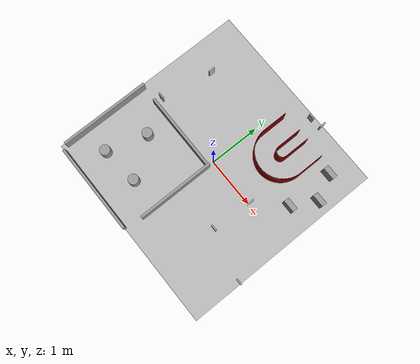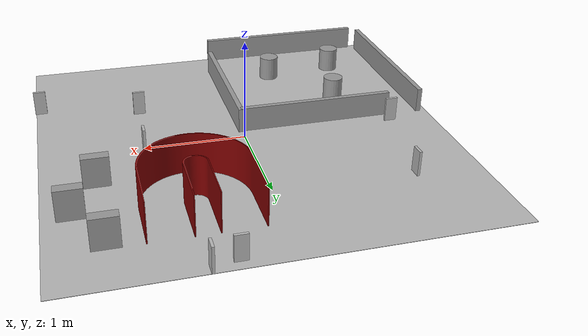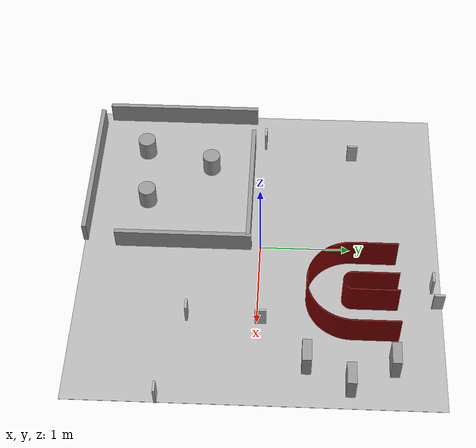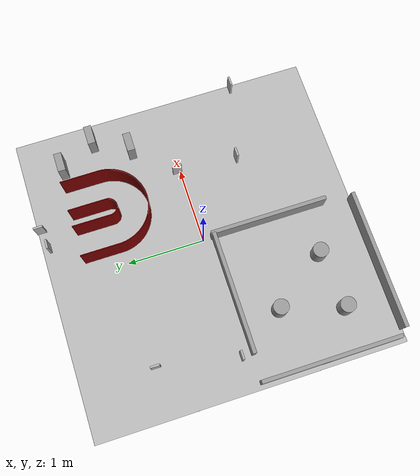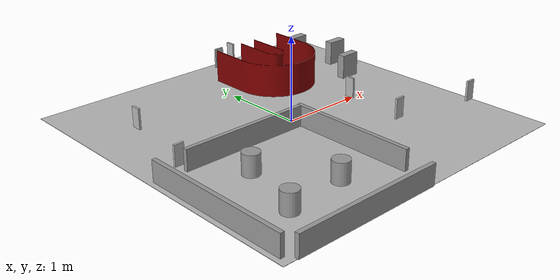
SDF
<sdf version="1.7">
 <world name="default">
  <scene>
   <ambient>0 0 0 1</ambient>
   <shadows>0</shadows>
   <grid>0</grid>
   <background>0.7 0.7 0.7 1</background>
  </scene>
  <model name="course">
   <static>1</static>
   <link name="course_link">
    <collision name="course_collision">
     <geometry><plane><normal>0 0 1</normal><size>4 4</size></plane></geometry>
     <surface><friction><ode><mu>100</mu><mu2>50</mu2></ode></friction></surface>
    </collision>
    <visual name="course_visual">
     <cast_shadows>0</cast_shadows>
     <geometry><plane><normal>0 0 1</normal><size>4 4</size></plane></geometry>
     <material>
      <script>
       <uri>model://course/materials/scripts</uri>
       <uri>model://course/materials/textures</uri>
       <name>course</name>
      </script>
     </material>
    </visual>
   </link>
   <pose>0 0 0 0 0 -3.14</pose>
  </model>
  <model name="traffic_parking">
   <static>1</static>
   <link name="box">
    <collision name="collision"><geometry><box><size>0.12 0.025 0.25</size></box></geometry></collision>
    <visual name="visual">
     <geometry><box><size>0.12 0.025 0.25</size></box></geometry>
     <material>
      <script>
       <uri>model://traffic_parking/materials/scripts</uri>
       <uri>model://traffic_parking/materials/textures</uri>
       <name>traffic_parking</name>
      </script>
     </material>
    </visual>
   </link>
   <pose>0.74 1.95 0.13 0 0 -1.57</pose>
  </model>
  <model name="traffic_tunnel">
   <pose>-1.544 0.006774 0.125 -1e-06 -3e-06 0.000132</pose>
   <link name="box">
    <collision name="collision"><geometry><box><size>0.12 0.025 0.25</size></box></geometry></collision>
    <visual name="visual">
     <geometry><box><size>0.12 0.025 0.25</size></box></geometry>
     <material>
      <script>
       <uri>model://traffic_tunnel/materials/scripts</uri>
       <uri>model://traffic_tunnel/materials/textures</uri>
       <name>traffic_tunnel</name>
      </script>
     </material>
    </visual>
    <inertial>
     <inertia><ixx>1</ixx><ixy>0</ixy><ixz>0</ixz><iyy>1</iyy><iyz>0</iyz><izz>1</izz></inertia>
     <mass>1</mass>
    </inertial>
   </link>
  </model>
  <model name="traffic_stop">
   <static>1</static>
   <link name="box">
    <collision name="collision"><geometry><box><size>0.12 0.025 0.25</size></box></geometry></collision>
    <visual name="visual">
     <geometry><box><size>0.12 0.025 0.25</size></box></geometry>
     <material>
      <script>
       <uri>model://traffic_stop/materials/scripts</uri>
       <uri>model://traffic_stop/materials/textures</uri>
       <name>traffic_stop</name>
      </script>
     </material>
    </visual>
   </link>
   <pose>-1.35 1.04 0.125 0 0 -1.57</pose>
  </model>
  <model name="traffic_pl_left">
   <static>1</static>
   <link name="box">
    <collision name="collision"><geometry><box><size>0.12 0.025 0.25</size></box></geometry></collision>
    <visual name="visual">
     <geometry><box><size>0.12 0.025 0.25</size></box></geometry>
     <material>
      <script>
       <uri>model://traffic_pl_left/materials/scripts</uri>
       <uri>model://traffic_pl_left/materials/textures</uri>
       <name>traffic_pl_left</name>
      </script>
     </material>
    </visual>
   </link>
   <pose>0.5 1.9 0.13 0 -0 0</pose>
  </model>
  <model name="traffic_construction">
   <static>1</static>
   <link name="box">
    <collision name="collision"><geometry><box><size>0.12 0.025 0.25</size></box></geometry></collision>
    <visual name="visual">
     <geometry><box><size>0.12 0.025 0.25</size></box></geometry>
     <material>
      <script>
       <uri>model://traffic_construction/materials/scripts</uri>
       <uri>model://traffic_construction/materials/textures</uri>
       <name>traffic_construction</name>
      </script>
     </material>
    </visual>
   </link>
   <pose>1 0.04 0.125 0 0 -1.57</pose>
  </model>
  <model name="traffic_intersection">
   <static>1</static>
   <link name="box">
    <collision name="collision"><geometry><box><size>0.12 0.025 0.25</size></box></geometry></collision>
    <visual name="visual">
     <geometry><box><size>0.12 0.025 0.25</size></box></geometry>
     <material>
      <script>
       <uri>model://traffic_intersection/materials/scripts</uri>
       <uri>model://traffic_intersection/materials/textures</uri>
       <name>traffic_intersection</name>
      </script>
     </material>
    </visual>
   </link>
   <pose>1.95 -1 0.125 0 -0 0</pose>
  </model>
  <model name="traffic_noentry">
   <static>1</static>
   <link name="box">
    <collision name="collision"><geometry><box><size>0.12 0.025 0.25</size></box></geometry></collision>
    <visual name="visual">
     <geometry><box><size>0.12 0.025 0.25</size></box></geometry>
     <material>
      <script>
       <uri>model://traffic_noentry/materials/scripts</uri>
       <uri>model://traffic_noentry/materials/textures</uri>
       <name>traffic_noentry</name>
      </script>
     </material>
    </visual>
   </link>
   <pose>0.95 -0.758 0.125 0 -0 0</pose>
  </model>
  <light name="sun" type="directional">
   <pose>0 0 10 0 -0 0</pose>
   <diffuse>0.8 0.8 0.8 1</diffuse>
   <specular>0.1 0.1 0.1 1</specular>
   <attenuation>
    <range>1000</range>
    <constant>0.9</constant>
    <linear>0.01</linear>
    <quadratic>0.001</quadratic>
   </attenuation>
   <direction>-0.5 0.5 -1</direction>
   <spot><inner_angle>0</inner_angle><outer_angle>0</outer_angle><falloff>0</falloff></spot>
  </light>
  <gravity>0 0 -9.8</gravity>
  <magnetic_field>6e-06 2.3e-05 -4.2e-05</magnetic_field>
  <atmosphere type="adiabatic"/>
  <physics name="default_physics" default="0" type="ode">
   <max_step_size>0.001</max_step_size>
   <real_time_factor>1</real_time_factor>
   <real_time_update_rate>1000</real_time_update_rate>
  </physics>
  <spherical_coordinates>
   <surface_model>EARTH_WGS84</surface_model>
   <latitude_deg>0</latitude_deg>
   <longitude_deg>0</longitude_deg>
   <elevation>0</elevation>
   <heading_deg>0</heading_deg>
  </spherical_coordinates>
  <light name="user_point_light_1" type="point">
   <pose>-1.64815 0.604519 1 0 -0 0</pose>
   <diffuse>0.5 0.5 0.5 1</diffuse>
   <specular>0.1 0.1 0.1 1</specular>
   <attenuation>
    <range>20</range>
    <constant>0.5</constant>
    <linear>0.01</linear>
    <quadratic>0.001</quadratic>
   </attenuation>
   <cast_shadows>0</cast_shadows>
   <direction>0 0 -1</direction>
   <spot><inner_angle>0</inner_angle><outer_angle>0</outer_angle><falloff>0</falloff></spot>
  </light>
  <light name="user_point_light_2" type="point">
   <pose>1.63854 1.69565 1 0 -0 0</pose>
   <diffuse>0.5 0.5 0.5 1</diffuse>
   <specular>0.1 0.1 0.1 1</specular>
   <attenuation>
    <range>20</range>
    <constant>0.5</constant>
    <linear>0.01</linear>
    <quadratic>0.001</quadratic>
   </attenuation>
   <cast_shadows>0</cast_shadows>
   <direction>0 0 -1</direction>
   <spot><inner_angle>0</inner_angle><outer_angle>0</outer_angle><falloff>0</falloff></spot>
  </light>
  <light name="user_point_light_3" type="point">
   <pose>0.42 -3.31 1 0 -0 0</pose>
   <diffuse>0.5 0.5 0.5 1</diffuse>
   <specular>0.1 0.1 0.1 1</specular>
   <attenuation>
    <range>20</range>
    <constant>0.5</constant>
    <linear>0.01</linear>
    <quadratic>0.001</quadratic>
   </attenuation>
   <cast_shadows>0</cast_shadows>
   <direction>0 0 -1</direction>
   <spot><inner_angle>0</inner_angle><outer_angle>0</outer_angle><falloff>0</falloff></spot>
  </light>
  <model name="tunnel_wall">
   <link name="Wall_1">
    <pose>-0.980783 0.049883 0 0 -0 1.5708</pose>
    <visual name="Wall_1_Visual">
     <pose>0 0 0.125 0 -0 0</pose>
     <geometry><box><size>1.8 0.05 0.25</size></box></geometry>
     <material>
      <script><uri>file://media/materials/scripts/gazebo.material</uri><name>Gazebo/Grey</name></script>
      <ambient>1 1 1 1</ambient>
      <diffuse>0.7 0.7 0.7 1</diffuse>
      <specular>0.01 0.01 0.01 1</specular>
      <emissive>0 0 0 1</emissive>
     </material>
    </visual>
    <collision name="Wall_1_Collision">
     <pose>0 0 0.125 0 -0 0</pose>
     <geometry><box><size>1.8 0.05 0.25</size></box></geometry>
     <surface>
      <friction>
       <ode><mu>1</mu><mu2>1</mu2><fdir1>0 0 0</fdir1><slip1>0</slip1><slip2>0</slip2></ode>
       <torsional>
        <coefficient>1</coefficient>
        <patch_radius>0</patch_radius>
        <surface_radius>0</surface_radius>
        <use_patch_radius>1</use_patch_radius>
        <ode><slip>0</slip></ode>
       </torsional>
      </friction>
      <bounce><restitution_coefficient>0</restitution_coefficient><threshold>1e+06</threshold></bounce>
      <contact>
       <collide_without_contact>0</collide_without_contact>
       <collide_without_contact_bitmask>1</collide_without_contact_bitmask>
       <collide_bitmask>1</collide_bitmask>
       <ode>
        <soft_cfm>0</soft_cfm>
        <soft_erp>0.2</soft_erp>
        <kp>1e+13</kp>
        <kd>1</kd>
        <max_vel>0.01</max_vel>
        <min_depth>0</min_depth>
       </ode>
       <bullet>
        <split_impulse>1</split_impulse>
        <split_impulse_penetration_threshold>-0.01</split_impulse_penetration_threshold>
        <soft_cfm>0</soft_cfm>
        <soft_erp>0.2</soft_erp>
        <kp>1e+13</kp>
        <kd>1</kd>
       </bullet>
      </contact>
     </surface>
    </collision>
   </link>
   <link name="Wall_2">
    <pose>0 -0.935438 0 0 -0 0</pose>
    <visual name="Wall_2_Visual">
     <pose>0 0 0.125 0 -0 0</pose>
     <geometry><box><size>1.8 0.05 0.25</size></box></geometry>
     <material>
      <script><uri>file://media/materials/scripts/gazebo.material</uri><name>Gazebo/Grey</name></script>
      <ambient>1 1 1 1</ambient>
      <diffuse>0.7 0.7 0.7 1</diffuse>
      <specular>0.01 0.01 0.01 1</specular>
      <emissive>0 0 0 1</emissive>
     </material>
    </visual>
    <collision name="Wall_2_Collision">
     <pose>0 0 0.125 0 -0 0</pose>
     <geometry><box><size>1.8 0.05 0.25</size></box></geometry>
     <surface>
      <friction>
       <ode><mu>1</mu><mu2>1</mu2><fdir1>0 0 0</fdir1><slip1>0</slip1><slip2>0</slip2></ode>
       <torsional>
        <coefficient>1</coefficient>
        <patch_radius>0</patch_radius>
        <surface_radius>0</surface_radius>
        <use_patch_radius>1</use_patch_radius>
        <ode><slip>0</slip></ode>
       </torsional>
      </friction>
      <bounce><restitution_coefficient>0</restitution_coefficient><threshold>1e+06</threshold></bounce>
      <contact>
       <collide_without_contact>0</collide_without_contact>
       <collide_without_contact_bitmask>1</collide_without_contact_bitmask>
       <collide_bitmask>1</collide_bitmask>
       <ode>
        <soft_cfm>0</soft_cfm>
        <soft_erp>0.2</soft_erp>
        <kp>1e+13</kp>
        <kd>1</kd>
        <max_vel>0.01</max_vel>
        <min_depth>0</min_depth>
       </ode>
       <bullet>
        <split_impulse>1</split_impulse>
        <split_impulse_penetration_threshold>-0.01</split_impulse_penetration_threshold>
        <soft_cfm>0</soft_cfm>
        <soft_erp>0.2</soft_erp>
        <kp>1e+13</kp>
        <kd>1</kd>
       </bullet>
      </contact>
     </surface>
    </collision>
   </link>
   <link name="Wall_3">
    <pose>0.943396 0.183669 0 0 -0 1.5708</pose>
    <inertial>
     <inertia><ixx>nan</ixx><ixy>0</ixy><ixz>0</ixz><iyy>nan</iyy><iyz>0</iyz><izz>nan</izz></inertia>
     <mass>0</mass>
    </inertial>
    <visual name="Wall_3_Visual">
     <pose>0 0 0.125 0 -0 0</pose>
     <geometry><box><size>1.53699 0.05 0.25</size></box></geometry>
     <material>
      <script><uri>file://media/materials/scripts/gazebo.material</uri><name>Gazebo/Grey</name></script>
      <ambient>1 1 1 1</ambient>
      <diffuse>0.7 0.7 0.7 1</diffuse>
      <specular>0.01 0.01 0.01 1</specular>
      <emissive>0 0 0 1</emissive>
     </material>
    </visual>
    <collision name="Wall_3_Collision">
     <pose>0 0 0.125 0 -0 0</pose>
     <geometry><box><size>1.53699 0.05 0.25</size></box></geometry>
     <surface>
      <friction>
       <ode><mu>1</mu><mu2>1</mu2><fdir1>0 0 0</fdir1><slip1>0</slip1><slip2>0</slip2></ode>
       <torsional>
        <coefficient>1</coefficient>
        <patch_radius>0</patch_radius>
        <surface_radius>0</surface_radius>
        <use_patch_radius>1</use_patch_radius>
        <ode><slip>0</slip></ode>
       </torsional>
      </friction>
      <bounce><restitution_coefficient>0</restitution_coefficient><threshold>1e+06</threshold></bounce>
      <contact>
       <collide_without_contact>0</collide_without_contact>
       <collide_without_contact_bitmask>1</collide_without_contact_bitmask>
       <collide_bitmask>1</collide_bitmask>
       <ode>
        <soft_cfm>0</soft_cfm>
        <soft_erp>0.2</soft_erp>
        <kp>1e+13</kp>
        <kd>1</kd>
        <max_vel>0.01</max_vel>
        <min_depth>0</min_depth>
       </ode>
       <bullet>
        <split_impulse>1</split_impulse>
        <split_impulse_penetration_threshold>-0.01</split_impulse_penetration_threshold>
        <soft_cfm>0</soft_cfm>
        <soft_erp>0.2</soft_erp>
        <kp>1e+13</kp>
        <kd>1</kd>
       </bullet>
      </contact>
     </surface>
    </collision>
   </link>
   <link name="Wall_4">
    <pose>0.15 0.915 0 0 -0 3.14159</pose>
    <visual name="Wall_4_Visual">
     <pose>0 0 0.125 0 -0 0</pose>
     <geometry><box><size>1.58 0.05 0.25</size></box></geometry>
     <material>
      <script><uri>file://media/materials/scripts/gazebo.material</uri><name>Gazebo/Grey</name></script>
      <ambient>1 1 1 1</ambient>
      <diffuse>0.7 0.7 0.7 1</diffuse>
      <specular>0.01 0.01 0.01 1</specular>
      <emissive>0 0 0 1</emissive>
     </material>
    </visual>
    <collision name="Wall_4_Collision">
     <pose>0 0 0.125 0 -0 0</pose>
     <geometry><box><size>1.58 0.05 0.25</size></box></geometry>
     <surface>
      <friction>
       <ode><mu>1</mu><mu2>1</mu2><fdir1>0 0 0</fdir1><slip1>0</slip1><slip2>0</slip2></ode>
       <torsional>
        <coefficient>1</coefficient>
        <patch_radius>0</patch_radius>
        <surface_radius>0</surface_radius>
        <use_patch_radius>1</use_patch_radius>
        <ode><slip>0</slip></ode>
       </torsional>
      </friction>
      <bounce><restitution_coefficient>0</restitution_coefficient><threshold>1e+06</threshold></bounce>
      <contact>
       <collide_without_contact>0</collide_without_contact>
       <collide_without_contact_bitmask>1</collide_without_contact_bitmask>
       <collide_bitmask>1</collide_bitmask>
       <ode>
        <soft_cfm>0</soft_cfm>
        <soft_erp>0.2</soft_erp>
        <kp>1e+13</kp>
        <kd>1</kd>
        <max_vel>0.01</max_vel>
        <min_depth>0</min_depth>
       </ode>
       <bullet>
        <split_impulse>1</split_impulse>
        <split_impulse_penetration_threshold>-0.01</split_impulse_penetration_threshold>
        <soft_cfm>0</soft_cfm>
        <soft_erp>0.2</soft_erp>
        <kp>1e+13</kp>
        <kd>1</kd>
       </bullet>
      </contact>
     </surface>
    </collision>
   </link>
   <static>1</static>
   <pose>-0.934697 -1.05574 0 0 -0 0</pose>
  </model>
  <model name="tunnel_obstacle">
   <link name="obstacle_1">
    <pose>0.42322 -0.212034 0 0 -0 0</pose>
    <inertial>
     <mass>0.0416663</mass>
     <inertia>
      <ixx>0.00098188</ixx>
      <ixy>0</ixy>
      <ixz>0</ixz>
      <iyy>0.00098188</iyy>
      <iyz>0</iyz>
      <izz>0.00046751</izz>
     </inertia>
    </inertial>
    <visual name="visual">
     <geometry><cylinder><radius>0.1</radius><length>0.25</length></cylinder></geometry>
     <material>
      <lighting>1</lighting>
      <script><uri>file://media/materials/scripts/gazebo.material</uri><name>Gazebo/Grey</name></script>
      <ambient>0.3 0.3 0.3 1</ambient>
      <diffuse>0.7 0.7 0.7 1</diffuse>
      <specular>0.01 0.01 0.01 1</specular>
      <emissive>0 0 0 1</emissive>
      <shader type="pixel"><normal_map>__default__</normal_map></shader>
     </material>
    </visual>
    <collision name="collision">
     <geometry><cylinder><radius>0.1</radius><length>0.46418</length></cylinder></geometry>
     <surface>
      <friction>
       <ode><mu>1</mu><mu2>1</mu2><fdir1>0 0 0</fdir1><slip1>0</slip1><slip2>0</slip2></ode>
       <torsional>
        <coefficient>1</coefficient>
        <patch_radius>0</patch_radius>
        <surface_radius>0</surface_radius>
        <use_patch_radius>1</use_patch_radius>
        <ode><slip>0</slip></ode>
       </torsional>
      </friction>
      <bounce><restitution_coefficient>0</restitution_coefficient><threshold>1e+06</threshold></bounce>
      <contact>
       <collide_without_contact>0</collide_without_contact>
       <collide_without_contact_bitmask>1</collide_without_contact_bitmask>
       <collide_bitmask>1</collide_bitmask>
       <ode>
        <soft_cfm>0</soft_cfm>
        <soft_erp>0.2</soft_erp>
        <kp>1e+13</kp>
        <kd>1</kd>
        <max_vel>0.01</max_vel>
        <min_depth>0</min_depth>
       </ode>
       <bullet>
        <split_impulse>1</split_impulse>
        <split_impulse_penetration_threshold>-0.01</split_impulse_penetration_threshold>
        <soft_cfm>0</soft_cfm>
        <soft_erp>0.2</soft_erp>
        <kp>1e+13</kp>
        <kd>1</kd>
       </bullet>
      </contact>
     </surface>
    </collision>
   </link>
   <link name="obstacle_2">
    <pose>-0.323729 -0.287563 0 0 -0 0</pose>
    <inertial>
     <mass>0.0416663</mass>
     <inertia>
      <ixx>0.00098188</ixx>
      <ixy>0</ixy>
      <ixz>0</ixz>
      <iyy>0.00098188</iyy>
      <iyz>0</iyz>
      <izz>0.00046751</izz>
     </inertia>
    </inertial>
    <visual name="visual">
     <geometry><cylinder><radius>0.1</radius><length>0.25</length></cylinder></geometry>
     <material>
      <lighting>1</lighting>
      <script><uri>file://media/materials/scripts/gazebo.material</uri><name>Gazebo/Grey</name></script>
      <ambient>0.3 0.3 0.3 1</ambient>
      <diffuse>0.7 0.7 0.7 1</diffuse>
      <specular>0.01 0.01 0.01 1</specular>
      <emissive>0 0 0 1</emissive>
      <shader type="pixel"><normal_map>__default__</normal_map></shader>
     </material>
    </visual>
    <collision name="collision">
     <geometry><cylinder><radius>0.1</radius><length>0.46418</length></cylinder></geometry>
     <surface>
      <friction>
       <ode><mu>1</mu><mu2>1</mu2><fdir1>0 0 0</fdir1><slip1>0</slip1><slip2>0</slip2></ode>
       <torsional>
        <coefficient>1</coefficient>
        <patch_radius>0</patch_radius>
        <surface_radius>0</surface_radius>
        <use_patch_radius>1</use_patch_radius>
        <ode><slip>0</slip></ode>
       </torsional>
      </friction>
      <bounce><restitution_coefficient>0</restitution_coefficient><threshold>1e+06</threshold></bounce>
      <contact>
       <collide_without_contact>0</collide_without_contact>
       <collide_without_contact_bitmask>1</collide_without_contact_bitmask>
       <collide_bitmask>1</collide_bitmask>
       <ode>
        <soft_cfm>0</soft_cfm>
        <soft_erp>0.2</soft_erp>
        <kp>1e+13</kp>
        <kd>1</kd>
        <max_vel>0.01</max_vel>
        <min_depth>0</min_depth>
       </ode>
       <bullet>
        <split_impulse>1</split_impulse>
        <split_impulse_penetration_threshold>-0.01</split_impulse_penetration_threshold>
        <soft_cfm>0</soft_cfm>
        <soft_erp>0.2</soft_erp>
        <kp>1e+13</kp>
        <kd>1</kd>
       </bullet>
      </contact>
     </surface>
    </collision>
   </link>
   <link name="obstacle_3">
    <pose>-0.099492 0.499594 0 0 -0 0</pose>
    <inertial>
     <mass>0.0416663</mass>
     <inertia>
      <ixx>0.00098188</ixx>
      <ixy>0</ixy>
      <ixz>0</ixz>
      <iyy>0.00098188</iyy>
      <iyz>0</iyz>
      <izz>0.00046751</izz>
     </inertia>
    </inertial>
    <visual name="visual">
     <geometry><cylinder><radius>0.1</radius><length>0.25</length></cylinder></geometry>
     <material>
      <lighting>1</lighting>
      <script><uri>file://media/materials/scripts/gazebo.material</uri><name>Gazebo/Grey</name></script>
      <ambient>0.3 0.3 0.3 1</ambient>
      <diffuse>0.7 0.7 0.7 1</diffuse>
      <specular>0.01 0.01 0.01 1</specular>
      <emissive>0 0 0 1</emissive>
      <shader type="pixel"><normal_map>__default__</normal_map></shader>
     </material>
    </visual>
    <collision name="collision">
     <geometry><cylinder><radius>0.1</radius><length>0.46418</length></cylinder></geometry>
     <surface>
      <friction>
       <ode><mu>1</mu><mu2>1</mu2><fdir1>0 0 0</fdir1><slip1>0</slip1><slip2>0</slip2></ode>
       <torsional>
        <coefficient>1</coefficient>
        <patch_radius>0</patch_radius>
        <surface_radius>0</surface_radius>
        <use_patch_radius>1</use_patch_radius>
        <ode><slip>0</slip></ode>
       </torsional>
      </friction>
      <bounce><restitution_coefficient>0</restitution_coefficient><threshold>1e+06</threshold></bounce>
      <contact>
       <collide_without_contact>0</collide_without_contact>
       <collide_without_contact_bitmask>1</collide_without_contact_bitmask>
       <collide_bitmask>1</collide_bitmask>
       <ode>
        <soft_cfm>0</soft_cfm>
        <soft_erp>0.2</soft_erp>
        <kp>1e+13</kp>
        <kd>1</kd>
        <max_vel>0.01</max_vel>
        <min_depth>0</min_depth>
       </ode>
       <bullet>
        <split_impulse>1</split_impulse>
        <split_impulse_penetration_threshold>-0.01</split_impulse_penetration_threshold>
        <soft_cfm>0</soft_cfm>
        <soft_erp>0.2</soft_erp>
        <kp>1e+13</kp>
        <kd>1</kd>
       </bullet>
      </contact>
     </surface>
    </collision>
   </link>
   <static>1</static>
   <pose>-1.04145 -1.12671 0.125 0 -0 0</pose>
  </model>
  <model name="barrier_1">
   <link name="link">
    <inertial>
     <mass>1</mass>
     <inertia>
      <ixx>0.166667</ixx>
      <ixy>0</ixy>
      <ixz>0</ixz>
      <iyy>0.166667</iyy>
      <iyz>0</iyz>
      <izz>0.166667</izz>
     </inertia>
    </inertial>
    <visual name="visual">
     <geometry><box><size>0.25 0.1 0.3</size></box></geometry>
     <material>
      <script><name>Gazebo/Grey</name><uri>file://media/materials/scripts/gazebo.material</uri></script>
      <shader type="pixel"><normal_map>__default__</normal_map></shader>
      <ambient>0.3 0.3 0.3 1</ambient>
      <diffuse>0.7 0.7 0.7 1</diffuse>
      <specular>0.01 0.01 0.01 1</specular>
      <emissive>0 0 0 1</emissive>
     </material>
    </visual>
    <collision name="collision">
     <geometry><box><size>0.25 0.1 0.3</size></box></geometry>
     <surface>
      <friction>
       <ode><mu>1</mu><mu2>1</mu2><fdir1>0 0 0</fdir1><slip1>0</slip1><slip2>0</slip2></ode>
       <torsional>
        <coefficient>1</coefficient>
        <patch_radius>0</patch_radius>
        <surface_radius>0</surface_radius>
        <use_patch_radius>1</use_patch_radius>
        <ode><slip>0</slip></ode>
       </torsional>
      </friction>
      <bounce><restitution_coefficient>0</restitution_coefficient><threshold>1e+06</threshold></bounce>
      <contact>
       <collide_without_contact>0</collide_without_contact>
       <collide_without_contact_bitmask>1</collide_without_contact_bitmask>
       <collide_bitmask>1</collide_bitmask>
       <ode>
        <soft_cfm>0</soft_cfm>
        <soft_erp>0.2</soft_erp>
        <kp>1e+13</kp>
        <kd>1</kd>
        <max_vel>0.01</max_vel>
        <min_depth>0</min_depth>
       </ode>
       <bullet>
        <split_impulse>1</split_impulse>
        <split_impulse_penetration_threshold>-0.01</split_impulse_penetration_threshold>
        <soft_cfm>0</soft_cfm>
        <soft_erp>0.2</soft_erp>
        <kp>1e+13</kp>
        <kd>1</kd>
       </bullet>
      </contact>
     </surface>
    </collision>
   </link>
   <static>0</static>
   <pose>1.49 0.54 0.149995 -1e-06 4e-06 2e-06</pose>
  </model>
  <model name="barrier_2">
   <link name="link">
    <inertial>
     <mass>1</mass>
     <inertia>
      <ixx>0.166667</ixx>
      <ixy>0</ixy>
      <ixz>0</ixz>
      <iyy>0.166667</iyy>
      <iyz>0</iyz>
      <izz>0.166667</izz>
     </inertia>
    </inertial>
    <visual name="visual">
     <geometry><box><size>0.25 0.1 0.3</size></box></geometry>
     <material>
      <script><name>Gazebo/Grey</name><uri>file://media/materials/scripts/gazebo.material</uri></script>
      <shader type="pixel"><normal_map>__default__</normal_map></shader>
      <ambient>0.3 0.3 0.3 1</ambient>
      <diffuse>0.7 0.7 0.7 1</diffuse>
      <specular>0.01 0.01 0.01 1</specular>
      <emissive>0 0 0 1</emissive>
     </material>
    </visual>
    <collision name="collision">
     <geometry><box><size>0.25 0.1 0.3</size></box></geometry>
     <surface>
      <friction>
       <ode><mu>1</mu><mu2>1</mu2><fdir1>0 0 0</fdir1><slip1>0</slip1><slip2>0</slip2></ode>
       <torsional>
        <coefficient>1</coefficient>
        <patch_radius>0</patch_radius>
        <surface_radius>0</surface_radius>
        <use_patch_radius>1</use_patch_radius>
        <ode><slip>0</slip></ode>
       </torsional>
      </friction>
      <bounce><restitution_coefficient>0</restitution_coefficient><threshold>1e+06</threshold></bounce>
      <contact>
       <collide_without_contact>0</collide_without_contact>
       <collide_without_contact_bitmask>1</collide_without_contact_bitmask>
       <collide_bitmask>1</collide_bitmask>
       <ode>
        <soft_cfm>0</soft_cfm>
        <soft_erp>0.2</soft_erp>
        <kp>1e+13</kp>
        <kd>1</kd>
        <max_vel>0.01</max_vel>
        <min_depth>0</min_depth>
       </ode>
       <bullet>
        <split_impulse>1</split_impulse>
        <split_impulse_penetration_threshold>-0.01</split_impulse_penetration_threshold>
        <soft_cfm>0</soft_cfm>
        <soft_erp>0.2</soft_erp>
        <kp>1e+13</kp>
        <kd>1</kd>
       </bullet>
      </contact>
     </surface>
    </collision>
   </link>
   <static>0</static>
   <pose>1.74 1 0.149999 0 -0 1e-06</pose>
  </model>
  <model name="barrier_3">
   <link name="link">
    <inertial>
     <mass>1</mass>
     <inertia>
      <ixx>0.166667</ixx>
      <ixy>0</ixy>
      <ixz>0</ixz>
      <iyy>0.166667</iyy>
      <iyz>0</iyz>
      <izz>0.166667</izz>
     </inertia>
    </inertial>
    <visual name="visual">
     <geometry><box><size>0.25 0.1 0.3</size></box></geometry>
     <material>
      <script><name>Gazebo/Grey</name><uri>file://media/materials/scripts/gazebo.material</uri></script>
      <shader type="pixel"><normal_map>__default__</normal_map></shader>
      <ambient>0.3 0.3 0.3 1</ambient>
      <diffuse>0.7 0.7 0.7 1</diffuse>
      <specular>0.01 0.01 0.01 1</specular>
      <emissive>0 0 0 1</emissive>
     </material>
    </visual>
    <collision name="collision">
     <geometry><box><size>0.25 0.1 0.3</size></box></geometry>
     <surface>
      <friction>
       <ode><mu>1</mu><mu2>1</mu2><fdir1>0 0 0</fdir1><slip1>0</slip1><slip2>0</slip2></ode>
       <torsional>
        <coefficient>1</coefficient>
        <patch_radius>0</patch_radius>
        <surface_radius>0</surface_radius>
        <use_patch_radius>1</use_patch_radius>
        <ode><slip>0</slip></ode>
       </torsional>
      </friction>
      <bounce><restitution_coefficient>0</restitution_coefficient><threshold>1e+06</threshold></bounce>
      <contact>
       <collide_without_contact>0</collide_without_contact>
       <collide_without_contact_bitmask>1</collide_without_contact_bitmask>
       <collide_bitmask>1</collide_bitmask>
       <ode>
        <soft_cfm>0</soft_cfm>
        <soft_erp>0.2</soft_erp>
        <kp>1e+13</kp>
        <kd>1</kd>
        <max_vel>0.01</max_vel>
        <min_depth>0</min_depth>
       </ode>
       <bullet>
        <split_impulse>1</split_impulse>
        <split_impulse_penetration_threshold>-0.01</split_impulse_penetration_threshold>
        <soft_cfm>0</soft_cfm>
        <soft_erp>0.2</soft_erp>
        <kp>1e+13</kp>
        <kd>1</kd>
       </bullet>
      </contact>
     </surface>
    </collision>
   </link>
   <static>0</static>
   <pose>1.49 1.464 0.149993 -1e-06 4e-06 2e-06</pose>
  </model>
  <model name="tunnel">
   <link name="link_0">
    <inertial>
     <mass>1</mass>
     <inertia>
      <ixx>0.166667</ixx>
      <ixy>0</ixy>
      <ixz>0</ixz>
      <iyy>0.166667</iyy>
      <iyz>0</iyz>
      <izz>0.166667</izz>
     </inertia>
    </inertial>
    <gravity>0</gravity>
    <visual name="visual">
     <geometry><mesh><uri>model://tunnel.stl</uri><scale>1 1 1</scale></mesh></geometry>
     <material>
      <lighting>1</lighting>
      <script><uri>file://media/materials/scripts/gazebo.material</uri><name>Gazebo/Grey</name></script>
      <shader type="pixel"><normal_map>__default__</normal_map></shader>
      <ambient>0.5 0 0 1</ambient>
      <diffuse>0.5 0 0 1</diffuse>
      <specular>0.5 0 0 1</specular>
      <emissive>0.5 0 0 1</emissive>
     </material>
    </visual>
    <collision name="collision">
     <geometry><mesh><uri>model://tunnel.stl</uri><scale>1 1 1</scale></mesh></geometry>
     <surface>
      <friction>
       <ode><mu>1</mu><mu2>1</mu2><fdir1>0 0 0</fdir1><slip1>0</slip1><slip2>0</slip2></ode>
       <torsional>
        <coefficient>1</coefficient>
        <patch_radius>0</patch_radius>
        <surface_radius>0</surface_radius>
        <use_patch_radius>1</use_patch_radius>
        <ode><slip>0</slip></ode>
       </torsional>
      </friction>
      <bounce><restitution_coefficient>0</restitution_coefficient><threshold>1e+06</threshold></bounce>
      <contact>
       <collide_without_contact>0</collide_without_contact>
       <collide_without_contact_bitmask>1</collide_without_contact_bitmask>
       <collide_bitmask>1</collide_bitmask>
       <ode>
        <soft_cfm>0</soft_cfm>
        <soft_erp>0.2</soft_erp>
        <kp>1e+13</kp>
        <kd>1</kd>
        <max_vel>0.01</max_vel>
        <min_depth>0</min_depth>
       </ode>
       <bullet>
        <split_impulse>1</split_impulse>
        <split_impulse_penetration_threshold>-0.01</split_impulse_penetration_threshold>
        <soft_cfm>0</soft_cfm>
        <soft_erp>0.2</soft_erp>
        <kp>1e+13</kp>
        <kd>1</kd>
       </bullet>
      </contact>
     </surface>
    </collision>
   </link>
   <static>1</static>
   <pose>0.67559 1.51886 0 0 -0 3.14159</pose>
  </model>
 </world>
</sdf>
